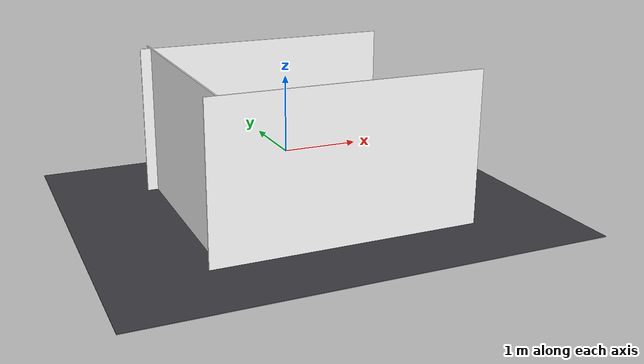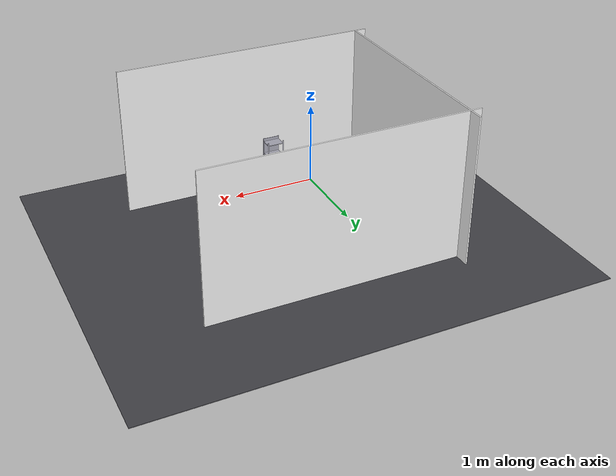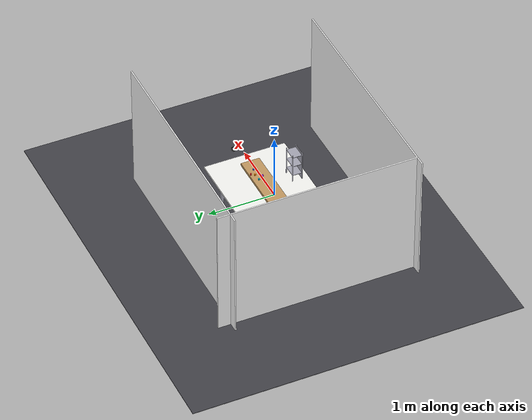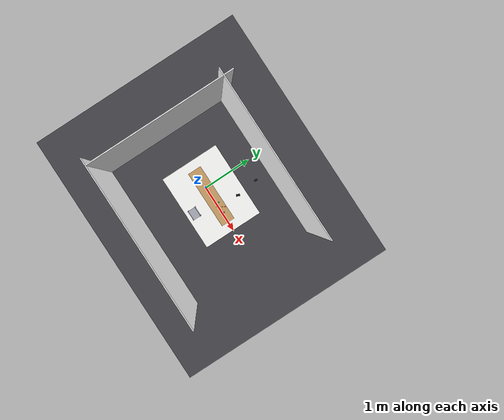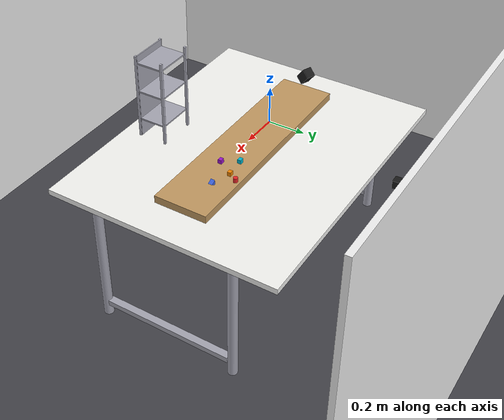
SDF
<sdf version="1.6">
 <world name="default">
  <physics name="1ms" type="ignored">
   <max_step_size>0.001</max_step_size>
   <real_time_factor>1.0</real_time_factor>
  </physics>
  <plugin filename="gz-sim-physics-system" name="gz::sim::systems::Physics"/>
  <plugin filename="gz-sim-user-commands-system" name="gz::sim::systems::UserCommands"/>
  <plugin filename="gz-sim-scene-broadcaster-system" name="gz::sim::systems::SceneBroadcaster"/>
  <plugin filename="gz-sim-sensors-system" name="gz::sim::systems::Sensors">
   <render_engine>ogre2</render_engine>
  </plugin>
  <gravity>0 0 -9.8</gravity>
  <light type="directional" name="sun">
   <pose>0 0 10 0 0 0</pose>
   <diffuse>0.8 0.8 0.8 1</diffuse>
   <specular>0.2 0.2 0.2 1</specular>
   <attenuation>
    <range>1000</range>
    <constant>0.9</constant>
    <linear>0.01</linear>
    <quadratic>0.001</quadratic>
   </attenuation>
   <direction>-0.5 0.1 -0.9</direction>
  </light>
  <light type="directional" name="fill_light">
   <cast_shadows>false</cast_shadows>
   <pose>0 0 5 0 0 0</pose>
   <diffuse>0.4 0.4 0.4 1</diffuse>
   <specular>0.1 0.1 0.1 1</specular>
   <attenuation>
    <range>1000</range>
    <constant>0.9</constant>
    <linear>0.01</linear>
    <quadratic>0.001</quadratic>
   </attenuation>
   <direction>0.3 -0.2 -0.9</direction>
  </light>
  <model name="floor">
   <static>true</static>
   <pose>0.2 0 -0.77 0 0 0</pose>
   <link name="link">
    <collision name="collision"><geometry><box><size>6.0 5.0 0.01</size></box></geometry></collision>
    <visual name="visual">
     <geometry><box><size>6.0 5.0 0.01</size></box></geometry>
     <material>
      <ambient>0.22 0.22 0.24 1</ambient>
      <diffuse>0.26 0.26 0.28 1</diffuse>
      <specular>0.02 0.02 0.02 1</specular>
     </material>
    </visual>
   </link>
  </model>
  <model name="table">
   <static>true</static>
   <link name="link">
    <collision name="tabletop_col">
     <pose>0.2 0 -0.055 0 0 0</pose>
     <geometry><box><size>1.6 1.25 0.03</size></box></geometry>
    </collision>
    <visual name="tabletop_vis">
     <pose>0.2 0 -0.055 0 0 0</pose>
     <geometry><box><size>1.6 1.25 0.03</size></box></geometry>
     <material>
      <ambient>0.94 0.94 0.93 1</ambient>
      <diffuse>0.96 0.96 0.95 1</diffuse>
      <specular>0.4 0.4 0.4 1</specular>
     </material>
    </visual>
    <collision name="leg_fl_col">
     <pose>-0.55 -0.375 -0.42 0 0 0</pose>
     <geometry><cylinder><radius>0.025</radius><length>0.695</length></cylinder></geometry>
    </collision>
    <visual name="leg_fl_vis">
     <pose>-0.55 -0.375 -0.42 0 0 0</pose>
     <geometry><cylinder><radius>0.025</radius><length>0.695</length></cylinder></geometry>
     <material>
      <ambient>0.55 0.55 0.60 1</ambient>
      <diffuse>0.65 0.65 0.70 1</diffuse>
      <specular>0.85 0.85 0.90 1</specular>
     </material>
    </visual>
    <collision name="leg_fr_col">
     <pose>-0.55 0.375 -0.42 0 0 0</pose>
     <geometry><cylinder><radius>0.025</radius><length>0.695</length></cylinder></geometry>
    </collision>
    <visual name="leg_fr_vis">
     <pose>-0.55 0.375 -0.42 0 0 0</pose>
     <geometry><cylinder><radius>0.025</radius><length>0.695</length></cylinder></geometry>
     <material>
      <ambient>0.55 0.55 0.60 1</ambient>
      <diffuse>0.65 0.65 0.70 1</diffuse>
      <specular>0.85 0.85 0.90 1</specular>
     </material>
    </visual>
    <collision name="leg_bl_col">
     <pose>0.95 -0.375 -0.42 0 0 0</pose>
     <geometry><cylinder><radius>0.025</radius><length>0.695</length></cylinder></geometry>
    </collision>
    <visual name="leg_bl_vis">
     <pose>0.95 -0.375 -0.42 0 0 0</pose>
     <geometry><cylinder><radius>0.025</radius><length>0.695</length></cylinder></geometry>
     <material>
      <ambient>0.55 0.55 0.60 1</ambient>
      <diffuse>0.65 0.65 0.70 1</diffuse>
      <specular>0.85 0.85 0.90 1</specular>
     </material>
    </visual>
    <collision name="leg_br_col">
     <pose>0.95 0.375 -0.42 0 0 0</pose>
     <geometry><cylinder><radius>0.025</radius><length>0.695</length></cylinder></geometry>
    </collision>
    <visual name="leg_br_vis">
     <pose>0.95 0.375 -0.42 0 0 0</pose>
     <geometry><cylinder><radius>0.025</radius><length>0.695</length></cylinder></geometry>
     <material>
      <ambient>0.55 0.55 0.60 1</ambient>
      <diffuse>0.65 0.65 0.70 1</diffuse>
      <specular>0.85 0.85 0.90 1</specular>
     </material>
    </visual>
    <visual name="crossbar_front_vis">
     <pose>-0.55 0 -0.68 0 0 0</pose>
     <geometry><box><size>0.04 0.71 0.03</size></box></geometry>
     <material>
      <ambient>0.55 0.55 0.60 1</ambient>
      <diffuse>0.65 0.65 0.70 1</diffuse>
      <specular>0.85 0.85 0.90 1</specular>
     </material>
    </visual>
    <visual name="crossbar_back_vis">
     <pose>0.95 0 -0.68 0 0 0</pose>
     <geometry><box><size>0.04 0.71 0.03</size></box></geometry>
     <material>
      <ambient>0.55 0.55 0.60 1</ambient>
      <diffuse>0.65 0.65 0.70 1</diffuse>
      <specular>0.85 0.85 0.90 1</specular>
     </material>
    </visual>
   </link>
  </model>
  <model name="wooden_plank">
   <static>true</static>
   <pose>0.2 0 -0.02 0 0 0</pose>
   <link name="link">
    <collision name="collision">
     <pose>0 0 -0.10 0 0 0</pose>
     <geometry><box><size>1.158 0.225 0.24</size></box></geometry>
     <surface>
      <friction><ode><mu>0.8</mu><mu2>0.8</mu2></ode></friction>
      <bounce><restitution_coefficient>0</restitution_coefficient><threshold>1e6</threshold></bounce>
      <contact>
       <collide_bitmask>0x0001</collide_bitmask>
       <ode><kp>1000000</kp><kd>100</kd><max_vel>0.01</max_vel><min_depth>0.001</min_depth></ode>
      </contact>
     </surface>
    </collision>
    <visual name="visual">
     <geometry><box><size>1.218 0.285 0.04</size></box></geometry>
     <material>
      <ambient>0.72 0.55 0.33 1</ambient>
      <diffuse>0.76 0.60 0.38 1</diffuse>
      <specular>0.08 0.06 0.04 1</specular>
     </material>
    </visual>
   </link>
  </model>
  <model name="block_teal">
   <static>false</static>
   <pose>0.38 0.06 0.011 0 0 0</pose>
   <link name="link">
    <inertial>
     <mass>0.1</mass>
     <inertia><ixx>7.37e-6</ixx><ixy>0</ixy><ixz>0</ixz><iyy>8.44e-6</iyy><iyz>0</iyz><izz>7.74e-6</izz></inertia>
    </inertial>
    <velocity_decay><angular>5.0</angular></velocity_decay>
    <collision name="collision">
     <geometry><box><size>0.023 0.020 0.022</size></box></geometry>
     <surface>
      <friction><ode><mu>2.5</mu><mu2>2.5</mu2></ode></friction>
      <bounce><restitution_coefficient>0</restitution_coefficient><threshold>1e6</threshold></bounce>
      <contact><ode><kp>100000</kp><kd>50</kd><max_vel>0.01</max_vel><min_depth>0.001</min_depth></ode></contact>
     </surface>
    </collision>
    <visual name="visual">
     <geometry><box><size>0.023 0.020 0.022</size></box></geometry>
     <material>
      <ambient>0.00 0.60 0.70 1</ambient>
      <diffuse>0.00 0.72 0.82 1</diffuse>
      <specular>0.30 0.60 0.70 1</specular>
     </material>
    </visual>
   </link>
  </model>
  <model name="block_purple">
   <static>false</static>
   <pose>0.43 -0.02 0.011 0 0 0</pose>
   <link name="link">
    <inertial>
     <mass>0.1</mass>
     <inertia><ixx>7.37e-6</ixx><ixy>0</ixy><ixz>0</ixz><iyy>8.44e-6</iyy><iyz>0</iyz><izz>7.74e-6</izz></inertia>
    </inertial>
    <velocity_decay><angular>5.0</angular></velocity_decay>
    <collision name="collision">
     <geometry><box><size>0.023 0.020 0.022</size></box></geometry>
     <surface>
      <friction><ode><mu>2.5</mu><mu2>2.5</mu2></ode></friction>
      <bounce><restitution_coefficient>0</restitution_coefficient><threshold>1e6</threshold></bounce>
      <contact><ode><kp>100000</kp><kd>50</kd><max_vel>0.01</max_vel><min_depth>0.001</min_depth></ode></contact>
     </surface>
    </collision>
    <visual name="visual">
     <geometry><box><size>0.023 0.020 0.022</size></box></geometry>
     <material>
      <ambient>0.55 0.00 0.70 1</ambient>
      <diffuse>0.62 0.08 0.80 1</diffuse>
      <specular>0.60 0.30 0.70 1</specular>
     </material>
    </visual>
   </link>
  </model>
  <model name="block_orange">
   <static>false</static>
   <pose>0.49 0.07 0.011 0 0 0</pose>
   <link name="link">
    <inertial>
     <mass>0.1</mass>
     <inertia><ixx>7.37e-6</ixx><ixy>0</ixy><ixz>0</ixz><iyy>8.44e-6</iyy><iyz>0</iyz><izz>7.74e-6</izz></inertia>
    </inertial>
    <velocity_decay><angular>5.0</angular></velocity_decay>
    <collision name="collision">
     <geometry><box><size>0.023 0.020 0.022</size></box></geometry>
     <surface>
      <friction><ode><mu>2.5</mu><mu2>2.5</mu2></ode></friction>
      <bounce><restitution_coefficient>0</restitution_coefficient><threshold>1e6</threshold></bounce>
      <contact><ode><kp>100000</kp><kd>50</kd><max_vel>0.01</max_vel><min_depth>0.001</min_depth></ode></contact>
     </surface>
    </collision>
    <visual name="visual">
     <geometry><box><size>0.023 0.020 0.022</size></box></geometry>
     <material>
      <ambient>0.90 0.40 0.00 1</ambient>
      <diffuse>0.95 0.52 0.00 1</diffuse>
      <specular>0.70 0.50 0.10 1</specular>
     </material>
    </visual>
   </link>
  </model>
  <model name="cylinder_red">
   <static>false</static>
   <pose>0.52 0.12 0.012 0 0 0</pose>
   <link name="link">
    <inertial>
     <mass>0.1</mass>
     <inertia><ixx>7.5e-6</ixx><ixy>0</ixy><ixz>0</ixz><iyy>7.5e-6</iyy><iyz>0</iyz><izz>7.2e-6</izz></inertia>
    </inertial>
    <velocity_decay><angular>5.0</angular></velocity_decay>
    <collision name="collision">
     <geometry><box><size>0.024 0.024 0.024</size></box></geometry>
     <surface>
      <friction><ode><mu>2.5</mu><mu2>2.5</mu2></ode></friction>
      <bounce><restitution_coefficient>0</restitution_coefficient><threshold>1e6</threshold></bounce>
      <contact><ode><kp>100000</kp><kd>50</kd><max_vel>0.01</max_vel><min_depth>0.001</min_depth></ode></contact>
     </surface>
    </collision>
    <visual name="visual">
     <geometry><cylinder><radius>0.012</radius><length>0.024</length></cylinder></geometry>
     <material>
      <ambient>0.80 0.10 0.10 1</ambient>
      <diffuse>0.90 0.15 0.15 1</diffuse>
      <specular>0.6 0.3 0.3 1</specular>
     </material>
    </visual>
   </link>
  </model>
  <model name="tri_prism">
   <static>false</static>
   <pose>0.60 0.04 0.014 0 0 0</pose>
   <link name="link">
    <inertial>
     <mass>0.1</mass>
     <inertia><ixx>7.0e-6</ixx><ixy>0</ixy><ixz>0</ixz><iyy>7.0e-6</iyy><iyz>0</iyz><izz>7.0e-6</izz></inertia>
    </inertial>
    <velocity_decay><angular>5.0</angular></velocity_decay>
    <collision name="collision">
     <geometry><box><size>0.0277 0.022 0.024</size></box></geometry>
     <surface>
      <friction><ode><mu>2.5</mu><mu2>2.5</mu2></ode></friction>
      <bounce><restitution_coefficient>0</restitution_coefficient><threshold>1e6</threshold></bounce>
      <contact><ode><kp>100000</kp><kd>50</kd><max_vel>0.01</max_vel><min_depth>0.001</min_depth></ode></contact>
     </surface>
    </collision>
    <visual name="visual">
     <geometry>
      <mesh><uri>file:///ar4_ws/install/annin_ar4_gazebo/share/annin_ar4_gazebo/meshes/tri_prism.stl</uri></mesh>
     </geometry>
     <material>
      <ambient>0.20 0.30 0.75 1</ambient>
      <diffuse>0.25 0.40 0.90 1</diffuse>
      <specular>0.3 0.3 0.6 1</specular>
     </material>
    </visual>
   </link>
  </model>
  <model name="bookshelf">
   <static>true</static>
   <pose>0.30 -0.45 -0.04 0 0 0</pose>
   <link name="link">
    <collision name="post_fl_col">
     <pose>-0.100 -0.075 0.230 0 0 0</pose>
     <geometry><box><size>0.008 0.008 0.460</size></box></geometry>
     <surface><contact><collide_bitmask>0x0001</collide_bitmask></contact></surface>
    </collision>
    <visual name="post_fl_vis">
     <pose>-0.100 -0.075 0.230 0 0 0</pose>
     <geometry><box><size>0.012 0.012 0.460</size></box></geometry>
     <material>
      <ambient>0.60 0.60 0.65 1</ambient>
      <diffuse>0.70 0.70 0.75 1</diffuse>
      <specular>0.85 0.85 0.90 1</specular>
     </material>
    </visual>
    <collision name="post_fr_col">
     <pose>-0.100 0.075 0.230 0 0 0</pose>
     <geometry><box><size>0.008 0.008 0.460</size></box></geometry>
     <surface><contact><collide_bitmask>0x0001</collide_bitmask></contact></surface>
    </collision>
    <visual name="post_fr_vis">
     <pose>-0.100 0.075 0.230 0 0 0</pose>
     <geometry><box><size>0.012 0.012 0.460</size></box></geometry>
     <material>
      <ambient>0.60 0.60 0.65 1</ambient>
      <diffuse>0.70 0.70 0.75 1</diffuse>
      <specular>0.85 0.85 0.90 1</specular>
     </material>
    </visual>
    <collision name="post_bl_col">
     <pose>0.100 -0.075 0.230 0 0 0</pose>
     <geometry><box><size>0.008 0.008 0.460</size></box></geometry>
     <surface><contact><collide_bitmask>0x0001</collide_bitmask></contact></surface>
    </collision>
    <visual name="post_bl_vis">
     <pose>0.100 -0.075 0.230 0 0 0</pose>
     <geometry><box><size>0.012 0.012 0.460</size></box></geometry>
     <material>
      <ambient>0.60 0.60 0.65 1</ambient>
      <diffuse>0.70 0.70 0.75 1</diffuse>
      <specular>0.85 0.85 0.90 1</specular>
     </material>
    </visual>
    <collision name="post_br_col">
     <pose>0.100 0.075 0.230 0 0 0</pose>
     <geometry><box><size>0.008 0.008 0.460</size></box></geometry>
     <surface><contact><collide_bitmask>0x0001</collide_bitmask></contact></surface>
    </collision>
    <visual name="post_br_vis">
     <pose>0.100 0.075 0.230 0 0 0</pose>
     <geometry><box><size>0.012 0.012 0.460</size></box></geometry>
     <material>
      <ambient>0.60 0.60 0.65 1</ambient>
      <diffuse>0.70 0.70 0.75 1</diffuse>
      <specular>0.85 0.85 0.90 1</specular>
     </material>
    </visual>
    <collision name="shelf1_col">
     <pose>0 0 0.100 0 0 0</pose>
     <geometry><box><size>0.188 0.138 0.008</size></box></geometry>
     <surface>
      <friction><ode><mu>0.8</mu><mu2>0.8</mu2></ode></friction>
      <contact>
       <collide_bitmask>0x0001</collide_bitmask>
       <ode><kp>50000</kp><kd>500</kd><max_vel>0.05</max_vel><min_depth>0.002</min_depth></ode>
      </contact>
     </surface>
    </collision>
    <visual name="shelf1_vis">
     <pose>0 0 0.100 0 0 0</pose>
     <geometry><box><size>0.200 0.150 0.008</size></box></geometry>
     <material>
      <ambient>0.55 0.55 0.60 1</ambient>
      <diffuse>0.65 0.65 0.70 1</diffuse>
      <specular>0.85 0.85 0.90 1</specular>
     </material>
    </visual>
    <collision name="shelf2_col">
     <pose>0 0 0.260 0 0 0</pose>
     <geometry><box><size>0.188 0.138 0.008</size></box></geometry>
     <surface>
      <friction><ode><mu>0.8</mu><mu2>0.8</mu2></ode></friction>
      <contact>
       <collide_bitmask>0x0001</collide_bitmask>
       <ode><kp>50000</kp><kd>500</kd><max_vel>0.05</max_vel><min_depth>0.002</min_depth></ode>
      </contact>
     </surface>
    </collision>
    <visual name="shelf2_vis">
     <pose>0 0 0.260 0 0 0</pose>
     <geometry><box><size>0.200 0.150 0.008</size></box></geometry>
     <material>
      <ambient>0.55 0.55 0.60 1</ambient>
      <diffuse>0.65 0.65 0.70 1</diffuse>
      <specular>0.85 0.85 0.90 1</specular>
     </material>
    </visual>
    <collision name="shelf3_col">
     <pose>0 0 0.420 0 0 0</pose>
     <geometry><box><size>0.188 0.138 0.008</size></box></geometry>
     <surface>
      <friction><ode><mu>0.8</mu><mu2>0.8</mu2></ode></friction>
      <contact>
       <collide_bitmask>0x0001</collide_bitmask>
       <ode><kp>50000</kp><kd>500</kd><max_vel>0.05</max_vel><min_depth>0.002</min_depth></ode>
      </contact>
     </surface>
    </collision>
    <visual name="shelf3_vis">
     <pose>0 0 0.420 0 0 0</pose>
     <geometry><box><size>0.200 0.150 0.008</size></box></geometry>
     <material>
      <ambient>0.55 0.55 0.60 1</ambient>
      <diffuse>0.65 0.65 0.70 1</diffuse>
      <specular>0.85 0.85 0.90 1</specular>
     </material>
    </visual>
    <visual name="back_panel_vis">
     <pose>0 -0.071 0.230 0 0 0</pose>
     <geometry><box><size>0.200 0.006 0.460</size></box></geometry>
     <material>
      <ambient>0.55 0.55 0.60 1</ambient>
      <diffuse>0.65 0.65 0.70 1</diffuse>
      <specular>0.85 0.85 0.90 1</specular>
     </material>
    </visual>
   </link>
  </model>
  <model name="back_wall">
   <static>true</static>
   <pose>0.2 1.30 0.23 0 0 0</pose>
   <link name="link">
    <collision name="collision"><geometry><box><size>3.5 0.02 2.0</size></box></geometry></collision>
    <visual name="visual">
     <geometry><box><size>3.5 0.02 2.0</size></box></geometry>
     <material>
      <ambient>0.92 0.92 0.92 1</ambient>
      <diffuse>0.95 0.95 0.95 1</diffuse>
      <specular>0.05 0.05 0.05 1</specular>
     </material>
    </visual>
   </link>
  </model>
  <model name="left_wall">
   <static>true</static>
   <pose>-1.4 0 0.23 0 0 0</pose>
   <link name="link">
    <visual name="visual">
     <geometry><box><size>0.02 3.0 2.0</size></box></geometry>
     <material>
      <ambient>0.92 0.92 0.92 1</ambient>
      <diffuse>0.95 0.95 0.95 1</diffuse>
      <specular>0.05 0.05 0.05 1</specular>
     </material>
    </visual>
   </link>
  </model>
  <model name="far_wall">
   <static>true</static>
   <pose>0.2 -1.50 0.23 0 0 0</pose>
   <link name="link">
    <visual name="visual">
     <geometry><box><size>3.5 0.02 2.0</size></box></geometry>
     <material>
      <ambient>0.92 0.92 0.92 1</ambient>
      <diffuse>0.95 0.95 0.95 1</diffuse>
      <specular>0.05 0.05 0.05 1</specular>
     </material>
    </visual>
   </link>
  </model>
  <model name="scene_camera">
   <static>true</static>
   <pose>0.41 0.88 0.23 0 0.02 -1.5708</pose>
   <link name="link">
    <visual name="body">
     <geometry><box><size>0.06 0.04 0.04</size></box></geometry>
     <material><ambient>0.05 0.05 0.05 1</ambient><diffuse>0.10 0.10 0.10 1</diffuse></material>
    </visual>
    <sensor name="scene_camera" type="camera">
     <always_on>true</always_on>
     <update_rate>15</update_rate>
     <camera>
      <horizontal_fov>1.15</horizontal_fov>
      <image><width>640</width><height>480</height><format>R8G8B8</format></image>
      <clip><near>0.05</near><far>12.0</far></clip>
     </camera>
     <topic>/scene_camera/image</topic>
     <gz_frame_id>scene_camera</gz_frame_id>
    </sensor>
   </link>
  </model>
  <model name="top_camera">
   <static>true</static>
   <pose>0.45 0.42 0.64 0 0.90 -1.95</pose>
   <link name="link">
    <visual name="body">
     <geometry><box><size>0.06 0.04 0.04</size></box></geometry>
     <material><ambient>0.05 0.05 0.05 1</ambient><diffuse>0.10 0.10 0.10 1</diffuse></material>
    </visual>
    <sensor name="top_camera" type="camera">
     <always_on>true</always_on>
     <update_rate>15</update_rate>
     <camera>
      <horizontal_fov>1.15</horizontal_fov>
      <image><width>640</width><height>480</height><format>R8G8B8</format></image>
      <clip><near>0.05</near><far>12.0</far></clip>
     </camera>
     <topic>/top_camera/image</topic>
     <gz_frame_id>top_camera</gz_frame_id>
    </sensor>
   </link>
  </model>
 </world>
</sdf>
